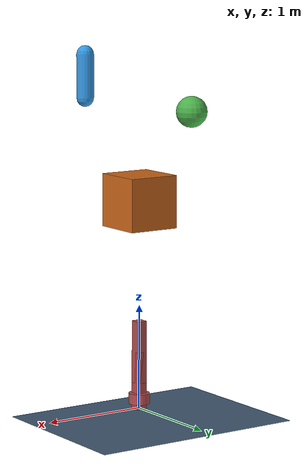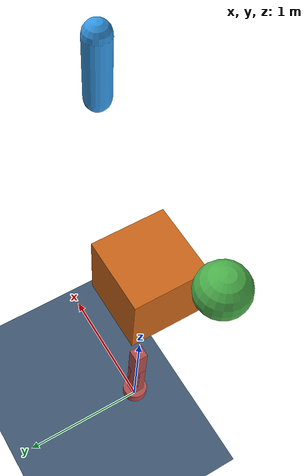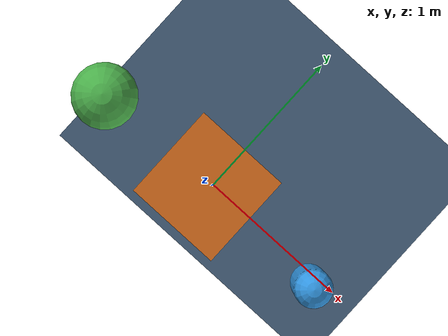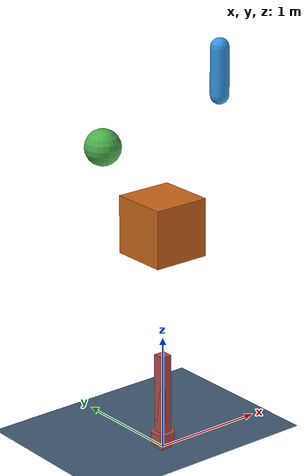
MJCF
<mujoco model="demo">
  <compiler angle="degree" coordinate="local"/>

  <!-- Gravity is enabled by default -->
  <option gravity="0 0 0" timestep="0.002">
    <flag warmstart="enable"/>
  </option>

  <!-- Visual settings -->
  <visual>
    <headlight ambient="0.5 0.5 0.5" diffuse="0.8 0.8 0.8"/>
    <rgba haze="0.15 0.25 0.35 1"/>  <!-- Haze for depth perception -->
    <global azimuth="10" elevation="-40"/>
  </visual>

  <!-- Assets: materials and textures -->
  <asset>
    <texture type="skybox" builtin="gradient" rgb1="0.3 0.5 0.7" rgb2="0 0 0" width="512" height="512"/>
    <texture name="grid" type="2d" builtin="checker" rgb1="0.2 0.3 0.4" rgb2="0.3 0.4 0.5" width="512" height="512"/>
    <material name="grid" texture="grid" texrepeat="1 1" texuniform="true" reflectance="0.2"/>
    <material name="robot" rgba="0.7 0.3 0.3 1"/>
    <material name="object" rgba="0.3 0.7 0.3 1"/>
  </asset>

  <!-- World body -->
  <worldbody>
    <!-- Floor -->
    <geom name="floor" type="plane" size="5 5 0.1" material="grid"/>

    <!-- Lighting -->
    <light pos="0 0 3" dir="0 0 -1" directional="true"/>

    <!-- Static objects -->
    <body name="static_box" pos="0 0 2">
      <geom name="box" type="box" size="0.25 0.25 0.25" rgba="0.8 0.4 0.1 1" mass="0.2"/>
    </body>

     <!-- Free-falling objects -->
    <!-- TODO -->
    <body name="falling_sphere" pos="-0.6 0 2.8">
      <freejoint/>
      <geom name="sphere" type="sphere" size="0.15" material="object" mass="0.4"/>
    </body>
    <body name="falling_capsule" pos="0.6 0 3.2">
      <freejoint/>
      <geom name="capsule" type="capsule" fromto="0 0 -0.2 0 0 0.2" size="0.08" rgba="0.2 0.6 0.9 1" mass="0.5"/>
    </body>

    <!-- Simple 2-link robot arm -->
    <!-- TODO -->
    <body name="robot_base" pos="0 0 0.1">
      <geom name="base" type="cylinder" size="0.1 0.05" material="robot" mass="0.5"/>
      <body name="link1" pos="0 0 0.15">
        <joint name="joint1" type="hinge" axis="0 1 0" range="-90 90"/>
        <geom name="link1_geom" type="box" size="0.05 0.05 0.3" material="robot" mass="0.3"/>
        <body name="link2" pos="0 0 0.3">
          <joint name="joint2" type="hinge" axis="0 1 0" range="-90 90"/>
          <geom name="link2_geom" type="box" size="0.05 0.05 0.3" material="robot" mass="0.2"/>
        </body>
      </body>
    </body>

  </worldbody>

</mujoco>
